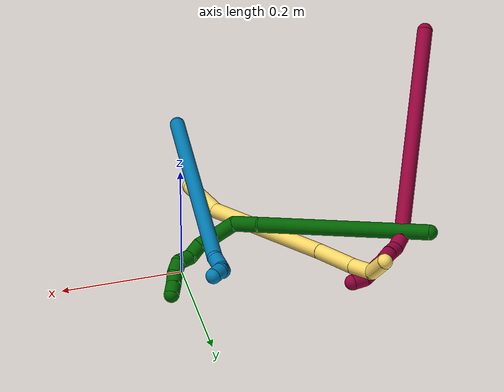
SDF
<sdf version="1.7">
 <world name="default">
  <model name="5">
   <static>0</static>
   <link name="5">
    <collision name="collision-cylinder-e_1_1_4">
     <pose>0.004664 0.018795 0.033951 -0.505586 0.119616 -0.030934</pose>
     <geometry><cylinder><radius>0.0125</radius><length>0.078171</length></cylinder></geometry>
     <surface>
      <friction><ode><mu>1.16</mu><mu2>1.16</mu2><slip1>0</slip1><slip2>0</slip2></ode></friction>
      <contact><ode><kp>1e+06</kp><kd>1</kd><max_vel>0</max_vel><min_depth>0.001</min_depth></ode></contact>
     </surface>
    </collision>
    <visual name="visual-cylinder-e_1_1_4">
     <pose>0.004664 0.018795 0.033951 -0.505586 0.119616 -0.030934</pose>
     <geometry><cylinder><radius>0.0125</radius><length>0.078171</length></cylinder></geometry>
     <material><ambient>1 0.858824 0.4 1</ambient></material>
    </visual>
    <collision name="collision-cylinder-e_2_4_5">
     <pose>-0.00127 0.075848 0.192187 -0.298628 -0.081321 0.01224</pose>
     <geometry><cylinder><radius>0.0125</radius><length>0.260942</length></cylinder></geometry>
     <surface>
      <friction><ode><mu>1.16</mu><mu2>1.16</mu2><slip1>0</slip1><slip2>0</slip2></ode></friction>
      <contact><ode><kp>1e+06</kp><kd>1</kd><max_vel>0</max_vel><min_depth>0.001</min_depth></ode></contact>
     </surface>
    </collision>
    <visual name="visual-cylinder-e_2_4_5">
     <pose>-0.00127 0.075848 0.192187 -0.298628 -0.081321 0.01224</pose>
     <geometry><cylinder><radius>0.0125</radius><length>0.260942</length></cylinder></geometry>
     <material><ambient>1 0.858824 0.4 1</ambient></material>
    </visual>
    <collision name="collision-cylinder-e_3_5_6">
     <pose>-0.015346 0.12812 0.351333 -0.382195 -0.0923 0.017869</pose>
     <geometry><cylinder><radius>0.0125</radius><length>0.075466</length></cylinder></geometry>
     <surface>
      <friction><ode><mu>1.16</mu><mu2>1.16</mu2><slip1>0</slip1><slip2>0</slip2></ode></friction>
      <contact><ode><kp>1e+06</kp><kd>1</kd><max_vel>0</max_vel><min_depth>0.001</min_depth></ode></contact>
     </surface>
    </collision>
    <visual name="visual-cylinder-e_3_5_6">
     <pose>-0.015346 0.12812 0.351333 -0.382195 -0.0923 0.017869</pose>
     <geometry><cylinder><radius>0.0125</radius><length>0.075466</length></cylinder></geometry>
     <material><ambient>1 0.858824 0.4 1</ambient></material>
    </visual>
    <collision name="collision-cylinder-e_4_6_7">
     <pose>-0.021985 0.148795 0.404604 -0.347214 -0.160091 0.028134</pose>
     <geometry><cylinder><radius>0.0125</radius><length>0.039663</length></cylinder></geometry>
     <surface>
      <friction><ode><mu>1.16</mu><mu2>1.16</mu2><slip1>0</slip1><slip2>0</slip2></ode></friction>
      <contact><ode><kp>1e+06</kp><kd>1</kd><max_vel>0</max_vel><min_depth>0.001</min_depth></ode></contact>
     </surface>
    </collision>
    <visual name="visual-cylinder-e_4_6_7">
     <pose>-0.021985 0.148795 0.404604 -0.347214 -0.160091 0.028134</pose>
     <geometry><cylinder><radius>0.0125</radius><length>0.039663</length></cylinder></geometry>
     <material><ambient>1 0.858824 0.4 1</ambient></material>
    </visual>
    <collision name="collision-cylinder-e_5_7_2">
     <pose>-0.032021 0.147799 0.443447 0.358557 -0.305156 -0.05572</pose>
     <geometry><cylinder><radius>0.0125</radius><length>0.045758</length></cylinder></geometry>
     <surface>
      <friction><ode><mu>1.16</mu><mu2>1.16</mu2><slip1>0</slip1><slip2>0</slip2></ode></friction>
      <contact><ode><kp>1e+06</kp><kd>1</kd><max_vel>0</max_vel><min_depth>0.001</min_depth></ode></contact>
     </surface>
    </collision>
    <visual name="visual-cylinder-e_5_7_2">
     <pose>-0.032021 0.147799 0.443447 0.358557 -0.305156 -0.05572</pose>
     <geometry><cylinder><radius>0.0125</radius><length>0.045758</length></cylinder></geometry>
     <material><ambient>1 0.858824 0.4 1</ambient></material>
    </visual>
    <collision name="collision-sphere-2">
     <pose>-0.038894 0.140141 0.463882 0 -0 0</pose>
     <geometry><sphere><radius>0.0125</radius></sphere></geometry>
     <surface>
      <friction><ode><mu>1.16</mu><mu2>1.16</mu2><slip1>0</slip1><slip2>0</slip2></ode></friction>
      <contact><ode><kp>1e+06</kp><kd>1</kd><max_vel>0</max_vel><min_depth>0.001</min_depth></ode></contact>
     </surface>
    </collision>
    <visual name="visual-sphere-2">
     <pose>-0.038894 0.140141 0.463882 0 -0 0</pose>
     <geometry><sphere><radius>0.0125</radius></sphere></geometry>
     <material><ambient>1 0.858824 0.4 1</ambient></material>
    </visual>
    <collision name="collision-sphere-7">
     <pose>-0.025147 0.155457 0.423013 0 -0 0</pose>
     <geometry><sphere><radius>0.0125</radius></sphere></geometry>
     <surface>
      <friction><ode><mu>1.16</mu><mu2>1.16</mu2><slip1>0</slip1><slip2>0</slip2></ode></friction>
      <contact><ode><kp>1e+06</kp><kd>1</kd><max_vel>0</max_vel><min_depth>0.001</min_depth></ode></contact>
     </surface>
    </collision>
    <visual name="visual-sphere-7">
     <pose>-0.025147 0.155457 0.423013 0 -0 0</pose>
     <geometry><sphere><radius>0.0125</radius></sphere></geometry>
     <material><ambient>1 0.858824 0.4 1</ambient></material>
    </visual>
    <collision name="collision-sphere-6">
     <pose>-0.018824 0.142133 0.386194 0 -0 0</pose>
     <geometry><sphere><radius>0.0125</radius></sphere></geometry>
     <surface>
      <friction><ode><mu>1.16</mu><mu2>1.16</mu2><slip1>0</slip1><slip2>0</slip2></ode></friction>
      <contact><ode><kp>1e+06</kp><kd>1</kd><max_vel>0</max_vel><min_depth>0.001</min_depth></ode></contact>
     </surface>
    </collision>
    <visual name="visual-sphere-6">
     <pose>-0.018824 0.142133 0.386194 0 -0 0</pose>
     <geometry><sphere><radius>0.0125</radius></sphere></geometry>
     <material><ambient>1 0.858824 0.4 1</ambient></material>
    </visual>
    <collision name="collision-sphere-5">
     <pose>-0.011869 0.114107 0.316471 0 -0 0</pose>
     <geometry><sphere><radius>0.0125</radius></sphere></geometry>
     <surface>
      <friction><ode><mu>1.16</mu><mu2>1.16</mu2><slip1>0</slip1><slip2>0</slip2></ode></friction>
      <contact><ode><kp>1e+06</kp><kd>1</kd><max_vel>0</max_vel><min_depth>0.001</min_depth></ode></contact>
     </surface>
    </collision>
    <visual name="visual-sphere-5">
     <pose>-0.011869 0.114107 0.316471 0 -0 0</pose>
     <geometry><sphere><radius>0.0125</radius></sphere></geometry>
     <material><ambient>1 0.858824 0.4 1</ambient></material>
    </visual>
    <collision name="collision-sphere-1">
     <geometry><sphere><radius>0.0125</radius></sphere></geometry>
     <surface>
      <friction><ode><mu>1.16</mu><mu2>1.16</mu2><slip1>0</slip1><slip2>0</slip2></ode></friction>
      <contact><ode><kp>1e+06</kp><kd>1</kd><max_vel>0</max_vel><min_depth>0.001</min_depth></ode></contact>
     </surface>
    </collision>
    <visual name="visual-sphere-1">
     <geometry><sphere><radius>0.0125</radius></sphere></geometry>
     <material><ambient>1 0.858824 0.4 1</ambient></material>
    </visual>
    <collision name="collision-sphere-4">
     <pose>0.009328 0.037589 0.067902 0 -0 0</pose>
     <geometry><sphere><radius>0.0125</radius></sphere></geometry>
     <surface>
      <friction><ode><mu>1.16</mu><mu2>1.16</mu2><slip1>0</slip1><slip2>0</slip2></ode></friction>
      <contact><ode><kp>1e+06</kp><kd>1</kd><max_vel>0</max_vel><min_depth>0.001</min_depth></ode></contact>
     </surface>
    </collision>
    <visual name="visual-sphere-4">
     <pose>0.009328 0.037589 0.067902 0 -0 0</pose>
     <geometry><sphere><radius>0.0125</radius></sphere></geometry>
     <material><ambient>1 0.858824 0.4 1</ambient></material>
    </visual>
    <inertial>
     <pose>-0.006924 0.087189 0.231313 0 -0 0</pose>
     <mass>0.5</mass>
     <inertia>
      <ixx>0.001597</ixx>
      <ixy>0</ixy>
      <ixz>0</ixz>
      <iyy>0.001542</iyy>
      <iyz>0</iyz>
      <izz>-0.000311</izz>
     </inertia>
    </inertial>
   </link>
   <pose>-0.055548 -0.168976 0.041129 -1.04791 0.348537 0.459965</pose>
  </model>
  <model name="6">
   <static>0</static>
   <link name="6">
    <collision name="collision-cylinder-e_1_1_4">
     <pose>0.0043 0.00117 -0.138822 -3.13316 0.030966 -2.61009</pose>
     <geometry><cylinder><radius>0.0125</radius><length>0.277787</length></cylinder></geometry>
     <surface>
      <friction><ode><mu>1.16</mu><mu2>1.16</mu2><slip1>0</slip1><slip2>0</slip2></ode></friction>
      <contact><ode><kp>1e+06</kp><kd>1</kd><max_vel>0</max_vel><min_depth>0.001</min_depth></ode></contact>
     </surface>
    </collision>
    <visual name="visual-cylinder-e_1_1_4">
     <pose>0.0043 0.00117 -0.138822 -3.13316 0.030966 -2.61009</pose>
     <geometry><cylinder><radius>0.0125</radius><length>0.277787</length></cylinder></geometry>
     <material><ambient>0 0.392157 0.003922 1</ambient></material>
    </visual>
    <collision name="collision-cylinder-e_2_4_5">
     <pose>0.004166 0.005529 -0.299307 -2.99547 -0.199812 1.8802</pose>
     <geometry><cylinder><radius>0.0125</radius><length>0.044682</length></cylinder></geometry>
     <surface>
      <friction><ode><mu>1.16</mu><mu2>1.16</mu2><slip1>0</slip1><slip2>0</slip2></ode></friction>
      <contact><ode><kp>1e+06</kp><kd>1</kd><max_vel>0</max_vel><min_depth>0.001</min_depth></ode></contact>
     </surface>
    </collision>
    <visual name="visual-cylinder-e_2_4_5">
     <pose>0.004166 0.005529 -0.299307 -2.99547 -0.199812 1.8802</pose>
     <geometry><cylinder><radius>0.0125</radius><length>0.044682</length></cylinder></geometry>
     <material><ambient>0 0.392157 0.003922 1</ambient></material>
    </visual>
    <collision name="collision-cylinder-e_3_5_6">
     <pose>0.005296 0.019363 -0.33755 -2.57078 0.275241 -0.882011</pose>
     <geometry><cylinder><radius>0.0125</radius><length>0.040949</length></cylinder></geometry>
     <surface>
      <friction><ode><mu>1.16</mu><mu2>1.16</mu2><slip1>0</slip1><slip2>0</slip2></ode></friction>
      <contact><ode><kp>1e+06</kp><kd>1</kd><max_vel>0</max_vel><min_depth>0.001</min_depth></ode></contact>
     </surface>
    </collision>
    <visual name="visual-cylinder-e_3_5_6">
     <pose>0.005296 0.019363 -0.33755 -2.57078 0.275241 -0.882011</pose>
     <geometry><cylinder><radius>0.0125</radius><length>0.040949</length></cylinder></geometry>
     <material><ambient>0 0.392157 0.003922 1</ambient></material>
    </visual>
    <collision name="collision-cylinder-e_4_6_7">
     <pose>0.015694 0.03552 -0.364545 -2.65497 0.389293 -1.34239</pose>
     <geometry><cylinder><radius>0.0125</radius><length>0.025471</length></cylinder></geometry>
     <surface>
      <friction><ode><mu>1.16</mu><mu2>1.16</mu2><slip1>0</slip1><slip2>0</slip2></ode></friction>
      <contact><ode><kp>1e+06</kp><kd>1</kd><max_vel>0</max_vel><min_depth>0.001</min_depth></ode></contact>
     </surface>
    </collision>
    <visual name="visual-cylinder-e_4_6_7">
     <pose>0.015694 0.03552 -0.364545 -2.65497 0.389293 -1.34239</pose>
     <geometry><cylinder><radius>0.0125</radius><length>0.025471</length></cylinder></geometry>
     <material><ambient>0 0.392157 0.003922 1</ambient></material>
    </visual>
    <collision name="collision-cylinder-e_5_7_8">
     <pose>0.031439 0.046176 -0.380243 -2.36928 0.976396 -1.83482</pose>
     <geometry><cylinder><radius>0.0125</radius><length>0.02634</length></cylinder></geometry>
     <surface>
      <friction><ode><mu>1.16</mu><mu2>1.16</mu2><slip1>0</slip1><slip2>0</slip2></ode></friction>
      <contact><ode><kp>1e+06</kp><kd>1</kd><max_vel>0</max_vel><min_depth>0.001</min_depth></ode></contact>
     </surface>
    </collision>
    <visual name="visual-cylinder-e_5_7_8">
     <pose>0.031439 0.046176 -0.380243 -2.36928 0.976396 -1.83482</pose>
     <geometry><cylinder><radius>0.0125</radius><length>0.02634</length></cylinder></geometry>
     <material><ambient>0 0.392157 0.003922 1</ambient></material>
    </visual>
    <collision name="collision-cylinder-e_6_8_9">
     <pose>0.050896 0.051881 -0.393166 -3.06865 0.839982 -2.97853</pose>
     <geometry><cylinder><radius>0.0125</radius><length>0.022954</length></cylinder></geometry>
     <surface>
      <friction><ode><mu>1.16</mu><mu2>1.16</mu2><slip1>0</slip1><slip2>0</slip2></ode></friction>
      <contact><ode><kp>1e+06</kp><kd>1</kd><max_vel>0</max_vel><min_depth>0.001</min_depth></ode></contact>
     </surface>
    </collision>
    <visual name="visual-cylinder-e_6_8_9">
     <pose>0.050896 0.051881 -0.393166 -3.06865 0.839982 -2.97853</pose>
     <geometry><cylinder><radius>0.0125</radius><length>0.022954</length></cylinder></geometry>
     <material><ambient>0 0.392157 0.003922 1</ambient></material>
    </visual>
    <collision name="collision-cylinder-e_7_9_10">
     <pose>0.068584 0.057821 -0.402086 -1.80419 1.02663 -1.23938</pose>
     <geometry><cylinder><radius>0.0125</radius><length>0.021371</length></cylinder></geometry>
     <surface>
      <friction><ode><mu>1.16</mu><mu2>1.16</mu2><slip1>0</slip1><slip2>0</slip2></ode></friction>
      <contact><ode><kp>1e+06</kp><kd>1</kd><max_vel>0</max_vel><min_depth>0.001</min_depth></ode></contact>
     </surface>
    </collision>
    <visual name="visual-cylinder-e_7_9_10">
     <pose>0.068584 0.057821 -0.402086 -1.80419 1.02663 -1.23938</pose>
     <geometry><cylinder><radius>0.0125</radius><length>0.021371</length></cylinder></geometry>
     <material><ambient>0 0.392157 0.003922 1</ambient></material>
    </visual>
    <collision name="collision-cylinder-e_8_10_11">
     <pose>0.086595 0.068039 -0.402219 -1.33809 1.06002 -0.867716</pose>
     <geometry><cylinder><radius>0.0125</radius><length>0.020332</length></cylinder></geometry>
     <surface>
      <friction><ode><mu>1.16</mu><mu2>1.16</mu2><slip1>0</slip1><slip2>0</slip2></ode></friction>
      <contact><ode><kp>1e+06</kp><kd>1</kd><max_vel>0</max_vel><min_depth>0.001</min_depth></ode></contact>
     </surface>
    </collision>
    <visual name="visual-cylinder-e_8_10_11">
     <pose>0.086595 0.068039 -0.402219 -1.33809 1.06002 -0.867716</pose>
     <geometry><cylinder><radius>0.0125</radius><length>0.020332</length></cylinder></geometry>
     <material><ambient>0 0.392157 0.003922 1</ambient></material>
    </visual>
    <collision name="collision-cylinder-e_9_11_2">
     <pose>0.104345 0.077591 -0.400891 -1.53229 1.08234 -1.04865</pose>
     <geometry><cylinder><radius>0.0125</radius><length>0.020114</length></cylinder></geometry>
     <surface>
      <friction><ode><mu>1.16</mu><mu2>1.16</mu2><slip1>0</slip1><slip2>0</slip2></ode></friction>
      <contact><ode><kp>1e+06</kp><kd>1</kd><max_vel>0</max_vel><min_depth>0.001</min_depth></ode></contact>
     </surface>
    </collision>
    <visual name="visual-cylinder-e_9_11_2">
     <pose>0.104345 0.077591 -0.400891 -1.53229 1.08234 -1.04865</pose>
     <geometry><cylinder><radius>0.0125</radius><length>0.020114</length></cylinder></geometry>
     <material><ambient>0 0.392157 0.003922 1</ambient></material>
    </visual>
    <collision name="collision-sphere-2">
     <pose>0.113225 0.082306 -0.40071 0 -0 0</pose>
     <geometry><sphere><radius>0.0125</radius></sphere></geometry>
     <surface>
      <friction><ode><mu>1.16</mu><mu2>1.16</mu2><slip1>0</slip1><slip2>0</slip2></ode></friction>
      <contact><ode><kp>1e+06</kp><kd>1</kd><max_vel>0</max_vel><min_depth>0.001</min_depth></ode></contact>
     </surface>
    </collision>
    <visual name="visual-sphere-2">
     <pose>0.113225 0.082306 -0.40071 0 -0 0</pose>
     <geometry><sphere><radius>0.0125</radius></sphere></geometry>
     <material><ambient>0 0.392157 0.003922 1</ambient></material>
    </visual>
    <collision name="collision-sphere-11">
     <pose>0.095464 0.072875 -0.401073 0 -0 0</pose>
     <geometry><sphere><radius>0.0125</radius></sphere></geometry>
     <surface>
      <friction><ode><mu>1.16</mu><mu2>1.16</mu2><slip1>0</slip1><slip2>0</slip2></ode></friction>
      <contact><ode><kp>1e+06</kp><kd>1</kd><max_vel>0</max_vel><min_depth>0.001</min_depth></ode></contact>
     </surface>
    </collision>
    <visual name="visual-sphere-11">
     <pose>0.095464 0.072875 -0.401073 0 -0 0</pose>
     <geometry><sphere><radius>0.0125</radius></sphere></geometry>
     <material><ambient>0 0.392157 0.003922 1</ambient></material>
    </visual>
    <collision name="collision-sphere-10">
     <pose>0.077727 0.063203 -0.403365 0 -0 0</pose>
     <geometry><sphere><radius>0.0125</radius></sphere></geometry>
     <surface>
      <friction><ode><mu>1.16</mu><mu2>1.16</mu2><slip1>0</slip1><slip2>0</slip2></ode></friction>
      <contact><ode><kp>1e+06</kp><kd>1</kd><max_vel>0</max_vel><min_depth>0.001</min_depth></ode></contact>
     </surface>
    </collision>
    <visual name="visual-sphere-10">
     <pose>0.077727 0.063203 -0.403365 0 -0 0</pose>
     <geometry><sphere><radius>0.0125</radius></sphere></geometry>
     <material><ambient>0 0.392157 0.003922 1</ambient></material>
    </visual>
    <collision name="collision-sphere-9">
     <pose>0.059442 0.052439 -0.400806 0 -0 0</pose>
     <geometry><sphere><radius>0.0125</radius></sphere></geometry>
     <surface>
      <friction><ode><mu>1.16</mu><mu2>1.16</mu2><slip1>0</slip1><slip2>0</slip2></ode></friction>
      <contact><ode><kp>1e+06</kp><kd>1</kd><max_vel>0</max_vel><min_depth>0.001</min_depth></ode></contact>
     </surface>
    </collision>
    <visual name="visual-sphere-9">
     <pose>0.059442 0.052439 -0.400806 0 -0 0</pose>
     <geometry><sphere><radius>0.0125</radius></sphere></geometry>
     <material><ambient>0 0.392157 0.003922 1</ambient></material>
    </visual>
    <collision name="collision-sphere-4">
     <pose>0.0086 0.00234 -0.277644 0 -0 0</pose>
     <geometry><sphere><radius>0.0125</radius></sphere></geometry>
     <surface>
      <friction><ode><mu>1.16</mu><mu2>1.16</mu2><slip1>0</slip1><slip2>0</slip2></ode></friction>
      <contact><ode><kp>1e+06</kp><kd>1</kd><max_vel>0</max_vel><min_depth>0.001</min_depth></ode></contact>
     </surface>
    </collision>
    <visual name="visual-sphere-4">
     <pose>0.0086 0.00234 -0.277644 0 -0 0</pose>
     <geometry><sphere><radius>0.0125</radius></sphere></geometry>
     <material><ambient>0 0.392157 0.003922 1</ambient></material>
    </visual>
    <collision name="collision-sphere-1">
     <geometry><sphere><radius>0.0125</radius></sphere></geometry>
     <surface>
      <friction><ode><mu>1.16</mu><mu2>1.16</mu2><slip1>0</slip1><slip2>0</slip2></ode></friction>
      <contact><ode><kp>1e+06</kp><kd>1</kd><max_vel>0</max_vel><min_depth>0.001</min_depth></ode></contact>
     </surface>
    </collision>
    <visual name="visual-sphere-1">
     <geometry><sphere><radius>0.0125</radius></sphere></geometry>
     <material><ambient>0 0.392157 0.003922 1</ambient></material>
    </visual>
    <collision name="collision-sphere-8">
     <pose>0.04235 0.051323 -0.385526 0 -0 0</pose>
     <geometry><sphere><radius>0.0125</radius></sphere></geometry>
     <surface>
      <friction><ode><mu>1.16</mu><mu2>1.16</mu2><slip1>0</slip1><slip2>0</slip2></ode></friction>
      <contact><ode><kp>1e+06</kp><kd>1</kd><max_vel>0</max_vel><min_depth>0.001</min_depth></ode></contact>
     </surface>
    </collision>
    <visual name="visual-sphere-8">
     <pose>0.04235 0.051323 -0.385526 0 -0 0</pose>
     <geometry><sphere><radius>0.0125</radius></sphere></geometry>
     <material><ambient>0 0.392157 0.003922 1</ambient></material>
    </visual>
    <collision name="collision-sphere-5">
     <pose>-0.000268 0.008717 -0.32097 0 -0 0</pose>
     <geometry><sphere><radius>0.0125</radius></sphere></geometry>
     <surface>
      <friction><ode><mu>1.16</mu><mu2>1.16</mu2><slip1>0</slip1><slip2>0</slip2></ode></friction>
      <contact><ode><kp>1e+06</kp><kd>1</kd><max_vel>0</max_vel><min_depth>0.001</min_depth></ode></contact>
     </surface>
    </collision>
    <visual name="visual-sphere-5">
     <pose>-0.000268 0.008717 -0.32097 0 -0 0</pose>
     <geometry><sphere><radius>0.0125</radius></sphere></geometry>
     <material><ambient>0 0.392157 0.003922 1</ambient></material>
    </visual>
    <collision name="collision-sphere-6">
     <pose>0.010861 0.03001 -0.354131 0 -0 0</pose>
     <geometry><sphere><radius>0.0125</radius></sphere></geometry>
     <surface>
      <friction><ode><mu>1.16</mu><mu2>1.16</mu2><slip1>0</slip1><slip2>0</slip2></ode></friction>
      <contact><ode><kp>1e+06</kp><kd>1</kd><max_vel>0</max_vel><min_depth>0.001</min_depth></ode></contact>
     </surface>
    </collision>
    <visual name="visual-sphere-6">
     <pose>0.010861 0.03001 -0.354131 0 -0 0</pose>
     <geometry><sphere><radius>0.0125</radius></sphere></geometry>
     <material><ambient>0 0.392157 0.003922 1</ambient></material>
    </visual>
    <collision name="collision-sphere-7">
     <pose>0.020528 0.04103 -0.37496 0 -0 0</pose>
     <geometry><sphere><radius>0.0125</radius></sphere></geometry>
     <surface>
      <friction><ode><mu>1.16</mu><mu2>1.16</mu2><slip1>0</slip1><slip2>0</slip2></ode></friction>
      <contact><ode><kp>1e+06</kp><kd>1</kd><max_vel>0</max_vel><min_depth>0.001</min_depth></ode></contact>
     </surface>
    </collision>
    <visual name="visual-sphere-7">
     <pose>0.020528 0.04103 -0.37496 0 -0 0</pose>
     <geometry><sphere><radius>0.0125</radius></sphere></geometry>
     <material><ambient>0 0.392157 0.003922 1</ambient></material>
    </visual>
    <inertial>
     <pose>0.018638 0.017713 -0.237838 0 -0 0</pose>
     <mass>0.5</mass>
     <inertia>
      <ixx>-0.002451</ixx>
      <ixy>0</ixy>
      <ixz>0</ixz>
      <iyy>0.00065</iyy>
      <iyz>0</iyz>
      <izz>-0.00012</izz>
     </inertia>
    </inertial>
   </link>
   <pose>-0.367623 0.160477 0.125947 -1.48972 -0.127214 1.08109</pose>
  </model>
  <model name="8">
   <static>0</static>
   <link name="8">
    <collision name="collision-cylinder-e_1_1_4">
     <pose>0.138169 0.119724 0.033559 -1.29751 0.838037 -0.651382</pose>
     <geometry><cylinder><radius>0.0125</radius><length>0.371757</length></cylinder></geometry>
     <surface>
      <friction><ode><mu>1.16</mu><mu2>1.16</mu2><slip1>0</slip1><slip2>0</slip2></ode></friction>
      <contact><ode><kp>1e+06</kp><kd>1</kd><max_vel>0</max_vel><min_depth>0.001</min_depth></ode></contact>
     </surface>
    </collision>
    <visual name="visual-cylinder-e_1_1_4">
     <pose>0.138169 0.119724 0.033559 -1.29751 0.838037 -0.651382</pose>
     <geometry><cylinder><radius>0.0125</radius><length>0.371757</length></cylinder></geometry>
     <material><ambient>0.584314 0 0.227451 1</ambient></material>
    </visual>
    <collision name="collision-cylinder-e_2_4_5">
     <pose>0.285432 0.243232 0.070239 -0.881006 1.07611 -0.54847</pose>
     <geometry><cylinder><radius>0.0125</radius><length>0.020663</length></cylinder></geometry>
     <surface>
      <friction><ode><mu>1.16</mu><mu2>1.16</mu2><slip1>0</slip1><slip2>0</slip2></ode></friction>
      <contact><ode><kp>1e+06</kp><kd>1</kd><max_vel>0</max_vel><min_depth>0.001</min_depth></ode></contact>
     </surface>
    </collision>
    <visual name="visual-cylinder-e_2_4_5">
     <pose>0.285432 0.243232 0.070239 -0.881006 1.07611 -0.54847</pose>
     <geometry><cylinder><radius>0.0125</radius><length>0.020663</length></cylinder></geometry>
     <material><ambient>0.584314 0 0.227451 1</ambient></material>
    </visual>
    <collision name="collision-cylinder-e_3_5_6">
     <pose>0.300481 0.249891 0.081879 -0.325554 0.585107 -0.09885</pose>
     <geometry><cylinder><radius>0.0125</radius><length>0.021571</length></cylinder></geometry>
     <surface>
      <friction><ode><mu>1.16</mu><mu2>1.16</mu2><slip1>0</slip1><slip2>0</slip2></ode></friction>
      <contact><ode><kp>1e+06</kp><kd>1</kd><max_vel>0</max_vel><min_depth>0.001</min_depth></ode></contact>
     </surface>
    </collision>
    <visual name="visual-cylinder-e_3_5_6">
     <pose>0.300481 0.249891 0.081879 -0.325554 0.585107 -0.09885</pose>
     <geometry><cylinder><radius>0.0125</radius><length>0.021571</length></cylinder></geometry>
     <material><ambient>0.584314 0 0.227451 1</ambient></material>
    </visual>
    <collision name="collision-cylinder-e_4_6_7">
     <pose>0.313244 0.256878 0.098569 -0.466257 0.639731 -0.15698</pose>
     <geometry><cylinder><radius>0.0125</radius><length>0.022802</length></cylinder></geometry>
     <surface>
      <friction><ode><mu>1.16</mu><mu2>1.16</mu2><slip1>0</slip1><slip2>0</slip2></ode></friction>
      <contact><ode><kp>1e+06</kp><kd>1</kd><max_vel>0</max_vel><min_depth>0.001</min_depth></ode></contact>
     </surface>
    </collision>
    <visual name="visual-cylinder-e_4_6_7">
     <pose>0.313244 0.256878 0.098569 -0.466257 0.639731 -0.15698</pose>
     <geometry><cylinder><radius>0.0125</radius><length>0.022802</length></cylinder></geometry>
     <material><ambient>0.584314 0 0.227451 1</ambient></material>
    </visual>
    <collision name="collision-cylinder-e_5_7_8">
     <pose>0.329985 0.261014 0.109356 -0.009072 1.31315 -0.006991</pose>
     <geometry><cylinder><radius>0.0125</radius><length>0.020549</length></cylinder></geometry>
     <surface>
      <friction><ode><mu>1.16</mu><mu2>1.16</mu2><slip1>0</slip1><slip2>0</slip2></ode></friction>
      <contact><ode><kp>1e+06</kp><kd>1</kd><max_vel>0</max_vel><min_depth>0.001</min_depth></ode></contact>
     </surface>
    </collision>
    <visual name="visual-cylinder-e_5_7_8">
     <pose>0.329985 0.261014 0.109356 -0.009072 1.31315 -0.006991</pose>
     <geometry><cylinder><radius>0.0125</radius><length>0.020549</length></cylinder></geometry>
     <material><ambient>0.584314 0 0.227451 1</ambient></material>
    </visual>
    <collision name="collision-cylinder-e_6_8_9">
     <pose>0.349685 0.261036 0.114374 0.000815 1.32988 0.000639</pose>
     <geometry><cylinder><radius>0.0125</radius><length>0.020111</length></cylinder></geometry>
     <surface>
      <friction><ode><mu>1.16</mu><mu2>1.16</mu2><slip1>0</slip1><slip2>0</slip2></ode></friction>
      <contact><ode><kp>1e+06</kp><kd>1</kd><max_vel>0</max_vel><min_depth>0.001</min_depth></ode></contact>
     </surface>
    </collision>
    <visual name="visual-cylinder-e_6_8_9">
     <pose>0.349685 0.261036 0.114374 0.000815 1.32988 0.000639</pose>
     <geometry><cylinder><radius>0.0125</radius><length>0.020111</length></cylinder></geometry>
     <material><ambient>0.584314 0 0.227451 1</ambient></material>
    </visual>
    <collision name="collision-cylinder-e_7_9_2">
     <pose>0.367707 0.258112 0.123872 0.390407 0.821768 0.171863</pose>
     <geometry><cylinder><radius>0.0125</radius><length>0.022548</length></cylinder></geometry>
     <surface>
      <friction><ode><mu>1.16</mu><mu2>1.16</mu2><slip1>0</slip1><slip2>0</slip2></ode></friction>
      <contact><ode><kp>1e+06</kp><kd>1</kd><max_vel>0</max_vel><min_depth>0.001</min_depth></ode></contact>
     </surface>
    </collision>
    <visual name="visual-cylinder-e_7_9_2">
     <pose>0.367707 0.258112 0.123872 0.390407 0.821768 0.171863</pose>
     <geometry><cylinder><radius>0.0125</radius><length>0.022548</length></cylinder></geometry>
     <material><ambient>0.584314 0 0.227451 1</ambient></material>
    </visual>
    <collision name="collision-sphere-2">
     <pose>0.375963 0.255191 0.130971 0 -0 0</pose>
     <geometry><sphere><radius>0.0125</radius></sphere></geometry>
     <surface>
      <friction><ode><mu>1.16</mu><mu2>1.16</mu2><slip1>0</slip1><slip2>0</slip2></ode></friction>
      <contact><ode><kp>1e+06</kp><kd>1</kd><max_vel>0</max_vel><min_depth>0.001</min_depth></ode></contact>
     </surface>
    </collision>
    <visual name="visual-sphere-2">
     <pose>0.375963 0.255191 0.130971 0 -0 0</pose>
     <geometry><sphere><radius>0.0125</radius></sphere></geometry>
     <material><ambient>0.584314 0 0.227451 1</ambient></material>
    </visual>
    <collision name="collision-sphere-9">
     <pose>0.359451 0.261034 0.116773 0 -0 0</pose>
     <geometry><sphere><radius>0.0125</radius></sphere></geometry>
     <surface>
      <friction><ode><mu>1.16</mu><mu2>1.16</mu2><slip1>0</slip1><slip2>0</slip2></ode></friction>
      <contact><ode><kp>1e+06</kp><kd>1</kd><max_vel>0</max_vel><min_depth>0.001</min_depth></ode></contact>
     </surface>
    </collision>
    <visual name="visual-sphere-9">
     <pose>0.359451 0.261034 0.116773 0 -0 0</pose>
     <geometry><sphere><radius>0.0125</radius></sphere></geometry>
     <material><ambient>0.584314 0 0.227451 1</ambient></material>
    </visual>
    <collision name="collision-sphere-4">
     <pose>0.276339 0.239448 0.067118 0 -0 0</pose>
     <geometry><sphere><radius>0.0125</radius></sphere></geometry>
     <surface>
      <friction><ode><mu>1.16</mu><mu2>1.16</mu2><slip1>0</slip1><slip2>0</slip2></ode></friction>
      <contact><ode><kp>1e+06</kp><kd>1</kd><max_vel>0</max_vel><min_depth>0.001</min_depth></ode></contact>
     </surface>
    </collision>
    <visual name="visual-sphere-4">
     <pose>0.276339 0.239448 0.067118 0 -0 0</pose>
     <geometry><sphere><radius>0.0125</radius></sphere></geometry>
     <material><ambient>0.584314 0 0.227451 1</ambient></material>
    </visual>
    <collision name="collision-sphere-1">
     <geometry><sphere><radius>0.0125</radius></sphere></geometry>
     <surface>
      <friction><ode><mu>1.16</mu><mu2>1.16</mu2><slip1>0</slip1><slip2>0</slip2></ode></friction>
      <contact><ode><kp>1e+06</kp><kd>1</kd><max_vel>0</max_vel><min_depth>0.001</min_depth></ode></contact>
     </surface>
    </collision>
    <visual name="visual-sphere-1">
     <geometry><sphere><radius>0.0125</radius></sphere></geometry>
     <material><ambient>0.584314 0 0.227451 1</ambient></material>
    </visual>
    <collision name="collision-sphere-8">
     <pose>0.33992 0.261038 0.111974 0 -0 0</pose>
     <geometry><sphere><radius>0.0125</radius></sphere></geometry>
     <surface>
      <friction><ode><mu>1.16</mu><mu2>1.16</mu2><slip1>0</slip1><slip2>0</slip2></ode></friction>
      <contact><ode><kp>1e+06</kp><kd>1</kd><max_vel>0</max_vel><min_depth>0.001</min_depth></ode></contact>
     </surface>
    </collision>
    <visual name="visual-sphere-8">
     <pose>0.33992 0.261038 0.111974 0 -0 0</pose>
     <geometry><sphere><radius>0.0125</radius></sphere></geometry>
     <material><ambient>0.584314 0 0.227451 1</ambient></material>
    </visual>
    <collision name="collision-sphere-5">
     <pose>0.294524 0.247015 0.07336 0 -0 0</pose>
     <geometry><sphere><radius>0.0125</radius></sphere></geometry>
     <surface>
      <friction><ode><mu>1.16</mu><mu2>1.16</mu2><slip1>0</slip1><slip2>0</slip2></ode></friction>
      <contact><ode><kp>1e+06</kp><kd>1</kd><max_vel>0</max_vel><min_depth>0.001</min_depth></ode></contact>
     </surface>
    </collision>
    <visual name="visual-sphere-5">
     <pose>0.294524 0.247015 0.07336 0 -0 0</pose>
     <geometry><sphere><radius>0.0125</radius></sphere></geometry>
     <material><ambient>0.584314 0 0.227451 1</ambient></material>
    </visual>
    <collision name="collision-sphere-6">
     <pose>0.306438 0.252767 0.090399 0 -0 0</pose>
     <geometry><sphere><radius>0.0125</radius></sphere></geometry>
     <surface>
      <friction><ode><mu>1.16</mu><mu2>1.16</mu2><slip1>0</slip1><slip2>0</slip2></ode></friction>
      <contact><ode><kp>1e+06</kp><kd>1</kd><max_vel>0</max_vel><min_depth>0.001</min_depth></ode></contact>
     </surface>
    </collision>
    <visual name="visual-sphere-6">
     <pose>0.306438 0.252767 0.090399 0 -0 0</pose>
     <geometry><sphere><radius>0.0125</radius></sphere></geometry>
     <material><ambient>0.584314 0 0.227451 1</ambient></material>
    </visual>
    <collision name="collision-sphere-7">
     <pose>0.32005 0.26099 0.106739 0 -0 0</pose>
     <geometry><sphere><radius>0.0125</radius></sphere></geometry>
     <surface>
      <friction><ode><mu>1.16</mu><mu2>1.16</mu2><slip1>0</slip1><slip2>0</slip2></ode></friction>
      <contact><ode><kp>1e+06</kp><kd>1</kd><max_vel>0</max_vel><min_depth>0.001</min_depth></ode></contact>
     </surface>
    </collision>
    <visual name="visual-sphere-7">
     <pose>0.32005 0.26099 0.106739 0 -0 0</pose>
     <geometry><sphere><radius>0.0125</radius></sphere></geometry>
     <material><ambient>0.584314 0 0.227451 1</ambient></material>
    </visual>
    <inertial>
     <pose>0.185983 0.15443 0.050562 0 -0 0</pose>
     <mass>0.5</mass>
     <inertia>
      <ixx>0.000577</ixx>
      <ixy>0</ixy>
      <ixz>0</ixz>
      <iyy>0.001073</iyy>
      <iyz>0</iyz>
      <izz>-0.005959</izz>
     </inertia>
    </inertial>
   </link>
   <pose>-0.451406 -0.152677 0.294442 -0.248575 0.730333 0.300624</pose>
  </model>
  <model name="9">
   <static>0</static>
   <link name="9">
    <collision name="collision-cylinder-e_1_1_4">
     <pose>0.017563 0.067766 -0.196223 -2.80907 0.0844 -0.493006</pose>
     <geometry><cylinder><radius>0.0125</radius><length>0.416673</length></cylinder></geometry>
     <surface>
      <friction><ode><mu>1.16</mu><mu2>1.16</mu2><slip1>0</slip1><slip2>0</slip2></ode></friction>
      <contact><ode><kp>1e+06</kp><kd>1</kd><max_vel>0</max_vel><min_depth>0.001</min_depth></ode></contact>
     </surface>
    </collision>
    <visual name="visual-cylinder-e_1_1_4">
     <pose>0.017563 0.067766 -0.196223 -2.80907 0.0844 -0.493006</pose>
     <geometry><cylinder><radius>0.0125</radius><length>0.416673</length></cylinder></geometry>
     <material><ambient>0 0.490196 0.709804 1</ambient></material>
    </visual>
    <collision name="collision-cylinder-e_2_4_5">
     <pose>0.030878 0.138453 -0.4028 -2.86659 -0.376025 1.88397</pose>
     <geometry><cylinder><radius>0.0125</radius><length>0.023133</length></cylinder></geometry>
     <surface>
      <friction><ode><mu>1.16</mu><mu2>1.16</mu2><slip1>0</slip1><slip2>0</slip2></ode></friction>
      <contact><ode><kp>1e+06</kp><kd>1</kd><max_vel>0</max_vel><min_depth>0.001</min_depth></ode></contact>
     </surface>
    </collision>
    <visual name="visual-cylinder-e_2_4_5">
     <pose>0.030878 0.138453 -0.4028 -2.86659 -0.376025 1.88397</pose>
     <geometry><cylinder><radius>0.0125</radius><length>0.023133</length></cylinder></geometry>
     <material><ambient>0 0.490196 0.709804 1</ambient></material>
    </visual>
    <collision name="collision-cylinder-e_3_5_6">
     <pose>0.029856 0.146704 -0.421041 -2.54731 0.326725 -0.987632</pose>
     <geometry><cylinder><radius>0.0125</radius><length>0.0201</length></cylinder></geometry>
     <surface>
      <friction><ode><mu>1.16</mu><mu2>1.16</mu2><slip1>0</slip1><slip2>0</slip2></ode></friction>
      <contact><ode><kp>1e+06</kp><kd>1</kd><max_vel>0</max_vel><min_depth>0.001</min_depth></ode></contact>
     </surface>
    </collision>
    <visual name="visual-cylinder-e_3_5_6">
     <pose>0.029856 0.146704 -0.421041 -2.54731 0.326725 -0.987632</pose>
     <geometry><cylinder><radius>0.0125</radius><length>0.0201</length></cylinder></geometry>
     <material><ambient>0 0.490196 0.709804 1</ambient></material>
    </visual>
    <collision name="collision-cylinder-e_4_6_7">
     <pose>0.039484 0.156895 -0.434912 -2.45934 0.692997 -1.58773</pose>
     <geometry><cylinder><radius>0.0125</radius><length>0.020045</length></cylinder></geometry>
     <surface>
      <friction><ode><mu>1.16</mu><mu2>1.16</mu2><slip1>0</slip1><slip2>0</slip2></ode></friction>
      <contact><ode><kp>1e+06</kp><kd>1</kd><max_vel>0</max_vel><min_depth>0.001</min_depth></ode></contact>
     </surface>
    </collision>
    <visual name="visual-cylinder-e_4_6_7">
     <pose>0.039484 0.156895 -0.434912 -2.45934 0.692997 -1.58773</pose>
     <geometry><cylinder><radius>0.0125</radius><length>0.020045</length></cylinder></geometry>
     <material><ambient>0 0.490196 0.709804 1</ambient></material>
    </visual>
    <collision name="collision-cylinder-e_5_7_2">
     <pose>0.051938 0.160434 -0.448778 2.97531 0.648021 2.65516</pose>
     <geometry><cylinder><radius>0.0125</radius><length>0.020049</length></cylinder></geometry>
     <surface>
      <friction><ode><mu>1.16</mu><mu2>1.16</mu2><slip1>0</slip1><slip2>0</slip2></ode></friction>
      <contact><ode><kp>1e+06</kp><kd>1</kd><max_vel>0</max_vel><min_depth>0.001</min_depth></ode></contact>
     </surface>
    </collision>
    <visual name="visual-cylinder-e_5_7_2">
     <pose>0.051938 0.160434 -0.448778 2.97531 0.648021 2.65516</pose>
     <geometry><cylinder><radius>0.0125</radius><length>0.020049</length></cylinder></geometry>
     <material><ambient>0 0.490196 0.709804 1</ambient></material>
    </visual>
    <collision name="collision-sphere-2">
     <pose>0.057989 0.159111 -0.456661 0 -0 0</pose>
     <geometry><sphere><radius>0.0125</radius></sphere></geometry>
     <surface>
      <friction><ode><mu>1.16</mu><mu2>1.16</mu2><slip1>0</slip1><slip2>0</slip2></ode></friction>
      <contact><ode><kp>1e+06</kp><kd>1</kd><max_vel>0</max_vel><min_depth>0.001</min_depth></ode></contact>
     </surface>
    </collision>
    <visual name="visual-sphere-2">
     <pose>0.057989 0.159111 -0.456661 0 -0 0</pose>
     <geometry><sphere><radius>0.0125</radius></sphere></geometry>
     <material><ambient>0 0.490196 0.709804 1</ambient></material>
    </visual>
    <collision name="collision-sphere-7">
     <pose>0.045887 0.161757 -0.440896 0 -0 0</pose>
     <geometry><sphere><radius>0.0125</radius></sphere></geometry>
     <surface>
      <friction><ode><mu>1.16</mu><mu2>1.16</mu2><slip1>0</slip1><slip2>0</slip2></ode></friction>
      <contact><ode><kp>1e+06</kp><kd>1</kd><max_vel>0</max_vel><min_depth>0.001</min_depth></ode></contact>
     </surface>
    </collision>
    <visual name="visual-sphere-7">
     <pose>0.045887 0.161757 -0.440896 0 -0 0</pose>
     <geometry><sphere><radius>0.0125</radius></sphere></geometry>
     <material><ambient>0 0.490196 0.709804 1</ambient></material>
    </visual>
    <collision name="collision-sphere-6">
     <pose>0.033081 0.152033 -0.428927 0 -0 0</pose>
     <geometry><sphere><radius>0.0125</radius></sphere></geometry>
     <surface>
      <friction><ode><mu>1.16</mu><mu2>1.16</mu2><slip1>0</slip1><slip2>0</slip2></ode></friction>
      <contact><ode><kp>1e+06</kp><kd>1</kd><max_vel>0</max_vel><min_depth>0.001</min_depth></ode></contact>
     </surface>
    </collision>
    <visual name="visual-sphere-6">
     <pose>0.033081 0.152033 -0.428927 0 -0 0</pose>
     <geometry><sphere><radius>0.0125</radius></sphere></geometry>
     <material><ambient>0 0.490196 0.709804 1</ambient></material>
    </visual>
    <collision name="collision-sphere-5">
     <pose>0.02663 0.141375 -0.413155 0 -0 0</pose>
     <geometry><sphere><radius>0.0125</radius></sphere></geometry>
     <surface>
      <friction><ode><mu>1.16</mu><mu2>1.16</mu2><slip1>0</slip1><slip2>0</slip2></ode></friction>
      <contact><ode><kp>1e+06</kp><kd>1</kd><max_vel>0</max_vel><min_depth>0.001</min_depth></ode></contact>
     </surface>
    </collision>
    <visual name="visual-sphere-5">
     <pose>0.02663 0.141375 -0.413155 0 -0 0</pose>
     <geometry><sphere><radius>0.0125</radius></sphere></geometry>
     <material><ambient>0 0.490196 0.709804 1</ambient></material>
    </visual>
    <collision name="collision-sphere-1">
     <geometry><sphere><radius>0.0125</radius></sphere></geometry>
     <surface>
      <friction><ode><mu>1.16</mu><mu2>1.16</mu2><slip1>0</slip1><slip2>0</slip2></ode></friction>
      <contact><ode><kp>1e+06</kp><kd>1</kd><max_vel>0</max_vel><min_depth>0.001</min_depth></ode></contact>
     </surface>
    </collision>
    <visual name="visual-sphere-1">
     <geometry><sphere><radius>0.0125</radius></sphere></geometry>
     <material><ambient>0 0.490196 0.709804 1</ambient></material>
    </visual>
    <collision name="collision-sphere-4">
     <pose>0.035125 0.135532 -0.392446 0 -0 0</pose>
     <geometry><sphere><radius>0.0125</radius></sphere></geometry>
     <surface>
      <friction><ode><mu>1.16</mu><mu2>1.16</mu2><slip1>0</slip1><slip2>0</slip2></ode></friction>
      <contact><ode><kp>1e+06</kp><kd>1</kd><max_vel>0</max_vel><min_depth>0.001</min_depth></ode></contact>
     </surface>
    </collision>
    <visual name="visual-sphere-4">
     <pose>0.035125 0.135532 -0.392446 0 -0 0</pose>
     <geometry><sphere><radius>0.0125</radius></sphere></geometry>
     <material><ambient>0 0.490196 0.709804 1</ambient></material>
    </visual>
    <inertial>
     <pose>0.02093 0.081498 -0.234514 0 -0 0</pose>
     <mass>0.5</mass>
     <inertia>
      <ixx>0.002459</ixx>
      <ixy>0</ixy>
      <ixz>0</ixz>
      <iyy>-0.00779</iyy>
      <iyz>0</iyz>
      <izz>-0.002515</izz>
     </inertia>
    </inertial>
   </link>
   <pose>-0.0642 -0.288424 0.083572 1.27458 -0.696762 -0.05552</pose>
  </model>
 </world>
</sdf>
